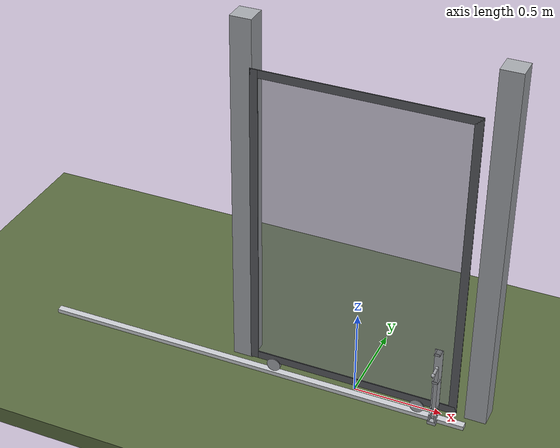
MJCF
<?xml version="1.0" ?>
<mujoco model="db0650_gate_sliding_full">
  <compiler angle="radian" meshdir="../../hardware" texturedir="../../textures" autolimits="true" inertiafromgeom="false"/>
  <option timestep="0.002" integrator="implicitfast" cone="elliptic" impratio="10" noslip_iterations="3">
    <flag multiccd="enable"/>
  </option>
  <size memory="16M"/>
  <default>
    <geom condim="4" solref="0.005 1" solimp="0.95 0.99 0.001"/>
    <joint solreflimit="0.005 1" solimplimit="0.95 0.99 0.001"/>
    <tendon solreflimit="0.005 1"/>
    <equality solref="0.002 1"/>
  </default>
  <visual>
    <headlight ambient="0.4 0.4 0.4" diffuse="0.7 0.7 0.7" specular="0.2 0.2 0.2"/>
    <quality shadowsize="4096"/>
    <map znear="0.01" zfar="60"/>
  </visual>
  <asset>
    <material name="mat_floor" rgba="0.35 0.42 0.25 1" specular="0.2" shininess="0.15" reflectance="0"/>
    <material name="mat_wall" rgba="0.78 0.76 0.7 1" specular="0.2" shininess="0.1" reflectance="0"/>
    <material name="mat_frame" rgba="0.65 0.66 0.68 1" specular="0.74" shininess="0.5" reflectance="0.36"/>
    <material name="mat_track" rgba="0.8 0.81 0.83 1" specular="0.8" shininess="0.6" reflectance="0.4"/>
    <material name="mat_leaf" rgba="0.35 0.36 0.38 1" specular="0.68" shininess="0.4" reflectance="0.32"/>
    <material name="mat_mesh_infill" rgba="0.6 0.62 0.64 0.55" specular="0.68" shininess="0.3" reflectance="0.1"/>
    <material name="mat_roller" rgba="0.65 0.66 0.68 1" specular="0.74" shininess="0.5" reflectance="0.36"/>
    <material name="mat_op_steel_galvanized" rgba="0.65 0.66 0.68 1" specular="0.74" shininess="0.5" reflectance="0.36"/>
    <material name="mat_keeper" rgba="0.65 0.66 0.68 1" specular="0.74" shininess="0.5" reflectance="0.36"/>
    <material name="mat_hook" rgba="0.75 0.76 0.77 1" specular="0.8" shininess="0.65" reflectance="0.4"/>
    <texture name="skybox" type="skybox" builtin="gradient" rgb1="0.6 0.7 0.85" rgb2="0.9 0.92 0.95" width="256" height="256"/>
  </asset>
  <worldbody>
    <light name="sun" pos="1.5 -2.5 4" dir="-0.3 0.5 -0.8" directional="true" diffuse="0.8 0.8 0.8" specular="0.3 0.3 0.3" castshadow="true"/>
    <light name="fill" pos="-1.5 2.5 3" dir="0.3 -0.5 -0.7" directional="true" diffuse="0.35 0.35 0.4" castshadow="false"/>
    <camera name="robot_view" pos="0 -2.359375 1.585625" xyaxes="1 0 0 0 0.26963 0.962964" fovy="52"/>
    <camera name="far_view" pos="0 2.359375 1.585625" xyaxes="-1 0 0 0 -0.26963 0.962964" fovy="52"/>
    <camera name="iso" pos="1.793125 -1.981875 1.963125" xyaxes="0.741536 0.670913 0 -0.242917 0.268487 0.932151" fovy="46"/>
    <camera name="detail_handle" pos="0.73 -1.247 0.716" xyaxes="0.975133 0.221621 0 -0.065674 0.288965 0.955084" fovy="38"/>
    <geom name="floor" type="box" size="6 6 0.05" pos="0 0 -0.05" material="mat_floor" group="0" contype="1" conaffinity="1" friction="0.8 0.005 0.0001" density="2400"/>
    <geom name="post_l" type="box" size="0.06 0.06 1.05" pos="-0.685 0.08 1.05" material="mat_frame" group="0" contype="1" conaffinity="1" friction="0.6 0.005 0.0001" density="7850"/>
    <geom name="post_r" type="box" size="0.06 0.06 1.05" pos="0.685 0.08 1.05" material="mat_frame" group="0" contype="1" conaffinity="1" friction="0.6 0.005 0.0001" density="7850"/>
    <geom name="gate_rail" type="box" size="1.25 0.02 0.012" pos="-0.6 -0.06 0.012" material="mat_track" group="0" contype="1" conaffinity="1" friction="0.6 0.005 0.0001" density="2700"/>
    <geom name="leaf_socket_n" type="box" size="0.004 0.02 0.02" pos="0.464 -0.083 0.04" material="mat_keeper" group="0" contype="1" conaffinity="1" friction="0.6 0.005 0.0001" density="7800"/>
    <geom name="leaf_socket_p" type="box" size="0.004 0.02 0.02" pos="0.496 -0.083 0.04" material="mat_keeper" group="0" contype="1" conaffinity="1" friction="0.6 0.005 0.0001" density="7800"/>
    <geom name="leaf_socket_b" type="box" size="0.02 0.004 0.02" pos="0.48 -0.067 0.04" material="mat_keeper" group="0" contype="1" conaffinity="1" friction="0.6 0.005 0.0001" density="7800"/>
    <geom name="leaf_socket_base" type="box" size="0.024 0.024 0.01" pos="0.48 -0.083 0.01" material="mat_keeper" group="1" contype="0" conaffinity="0" density="7800"/>
    <site name="approach_point" pos="0 -1.5 0" quat="1 0 0 0" size="0.05" rgba="0.2 0.9 0.2 0.5" group="4"/>
    <site name="goal_point" pos="0 1.5 0" quat="1 0 0 0" size="0.05" rgba="0.2 0.9 0.2 0.5" group="4"/>
    <site name="door_plane_center" pos="0 0 0.925" quat="1 0 0 0" size="0.02" rgba="0.2 0.9 0.2 0.5" group="4"/>
    <body name="leaf" pos="0 -0.06 0">
      <inertial pos="0.002333 -0.000071 0.956513" mass="61.52372" quat="0.502127 0.502181 0.497725 -0.497948" diaginertia="7.501120452 17.395206296 24.895699693"/>
      <joint name="leaf_slide" type="slide" axis="-1 0 0" limited="true" range="0 1.2" damping="5.1254" frictionloss="73.559289" armature="0.5"/>
      <geom name="leaf_slab_col" type="box" size="0.6 0.003 0.9" pos="0 0 0.98" material="mat_leaf" group="3" contype="1" conaffinity="1" rgba="0.8 0.3 0.3 0.25" friction="0.45 0.005 0.0001" density="1"/>
      <geom name="leaf_rail_b" type="box" size="0.6 0.003 0.0225" pos="0 0 0.1025" material="mat_leaf" group="1" contype="0" conaffinity="0" density="1"/>
      <geom name="leaf_rail_t" type="box" size="0.6 0.003 0.0225" pos="0 0 1.8575" material="mat_leaf" group="1" contype="0" conaffinity="0" density="1"/>
      <geom name="leaf_stile_h" type="box" size="0.0225 0.003 0.9" pos="-0.5775 0 0.98" material="mat_leaf" group="1" contype="0" conaffinity="0" density="1"/>
      <geom name="leaf_stile_l" type="box" size="0.0225 0.003 0.9" pos="0.5775 0 0.98" material="mat_leaf" group="1" contype="0" conaffinity="0" density="1"/>
      <geom name="leaf_mesh" type="box" size="0.555 0.0015 0.855" pos="0 0 0.98" material="mat_mesh_infill" group="1" contype="0" conaffinity="0" density="1"/>
      <geom name="leaf_roller_0" type="cylinder" size="0.04 0.008" pos="-0.46 0 0.064" quat="0.707107 -0.707107 0 0" material="mat_roller" group="1" contype="0" conaffinity="0" density="7850"/>
      <geom name="leaf_roller_1" type="cylinder" size="0.04 0.008" pos="0.38 0 0.064" quat="0.707107 -0.707107 0 0" material="mat_roller" group="1" contype="0" conaffinity="0" density="7850"/>
      <geom name="leaf_slide_bolt_plate" type="box" size="0.196 0.023 0.001" pos="0.48 -0.004 0.284" quat="-0.5 -0.5 -0.5 0.5" material="mat_op_steel_galvanized" group="1" contype="0" conaffinity="0" density="7800"/>
      <geom name="leaf_slide_bolt_guide_0_leg_n" type="box" size="0.006 0.002 0.0185" pos="0.465 -0.0215 0.096" quat="-0.5 -0.5 -0.5 0.5" material="mat_op_steel_galvanized" group="1" contype="0" conaffinity="0" density="7800"/>
      <geom name="leaf_slide_bolt_guide_0_leg_p" type="box" size="0.006 0.002 0.0185" pos="0.495 -0.0215 0.096" quat="-0.5 -0.5 -0.5 0.5" material="mat_op_steel_galvanized" group="1" contype="0" conaffinity="0" density="7800"/>
      <geom name="leaf_slide_bolt_guide_0_bridge" type="box" size="0.006 0.017 0.002" pos="0.48 -0.038 0.096" quat="-0.5 -0.5 -0.5 0.5" material="mat_op_steel_galvanized" group="1" contype="0" conaffinity="0" density="7800"/>
      <geom name="leaf_slide_bolt_guide_1_leg_n" type="box" size="0.006 0.002 0.0185" pos="0.465 -0.0215 0.47" quat="-0.5 -0.5 -0.5 0.5" material="mat_op_steel_galvanized" group="1" contype="0" conaffinity="0" density="7800"/>
      <geom name="leaf_slide_bolt_guide_1_leg_p" type="box" size="0.006 0.002 0.0185" pos="0.495 -0.0215 0.47" quat="-0.5 -0.5 -0.5 0.5" material="mat_op_steel_galvanized" group="1" contype="0" conaffinity="0" density="7800"/>
      <geom name="leaf_slide_bolt_guide_1_bridge" type="box" size="0.006 0.017 0.002" pos="0.48 -0.038 0.47" quat="-0.5 -0.5 -0.5 0.5" material="mat_op_steel_galvanized" group="1" contype="0" conaffinity="0" density="7800"/>
      <geom name="leaf_slide_bolt_guide_2_leg_n" type="box" size="0.006 0.002 0.0185" pos="0.465 -0.0215 0.283" quat="-0.5 -0.5 -0.5 0.5" material="mat_op_steel_galvanized" group="1" contype="0" conaffinity="0" density="7800"/>
      <geom name="leaf_slide_bolt_guide_2_leg_p" type="box" size="0.006 0.002 0.0185" pos="0.495 -0.0215 0.283" quat="-0.5 -0.5 -0.5 0.5" material="mat_op_steel_galvanized" group="1" contype="0" conaffinity="0" density="7800"/>
      <geom name="leaf_slide_bolt_guide_2_bridge" type="box" size="0.006 0.017 0.002" pos="0.48 -0.038 0.283" quat="-0.5 -0.5 -0.5 0.5" material="mat_op_steel_galvanized" group="1" contype="0" conaffinity="0" density="7800"/>
      <site name="leaf_edge_mid" pos="0.6 0 0.98" quat="1 0 0 0" size="0.02" rgba="0.2 0.9 0.2 0.5" group="4"/>
      <body name="leaf_slide_bolt" pos="0.48 -0.023 0.08">
        <inertial pos="0 -0.005155 0.144148" mass="0.98428" quat="-0.022342 0.706754 -0.022342 0.706754" diaginertia="0.000222618 0.011640367 0.011815899"/>
        <joint name="leaf_slide_bolt_slide" type="slide" axis="0 0 1" limited="true" range="0 0.08" damping="2" frictionloss="3" armature="0.1"/>
        <geom name="leaf_slide_bolt_rod" type="capsule" size="0.01 0.167" pos="0 0 0.123" quat="0 1 0 0" material="mat_op_steel_galvanized" group="0" contype="1" conaffinity="1" friction="0.6 0.005 0.0001" density="7850"/>
        <geom name="leaf_slide_bolt_knob" type="capsule" size="0.008 0.022" pos="0 -0.03 0.286" quat="0.707107 0.707107 0 0" material="mat_op_steel_galvanized" group="0" contype="1" conaffinity="1" friction="0.6 0.005 0.0001" density="7850"/>
        <geom name="leaf_slide_bolt_knob_end" type="sphere" size="0.0108" pos="0 -0.06 0.286" material="mat_op_steel_galvanized" group="1" contype="0" conaffinity="0" density="7850"/>
        <site name="leaf_grip_bolt" pos="0 -0.064 0.286" quat="1 0 0 0" size="0.012" rgba="0.2 0.9 0.2 0.5" group="4"/>
      </body>
    </body>
  </worldbody>
  <sensor>
    <jointpos name="leaf_slide_pos" joint="leaf_slide"/>
    <jointvel name="leaf_slide_vel" joint="leaf_slide"/>
    <jointpos name="leaf_slide_bolt_slide_pos" joint="leaf_slide_bolt_slide"/>
    <jointvel name="leaf_slide_bolt_slide_vel" joint="leaf_slide_bolt_slide"/>
  </sensor>
</mujoco>
